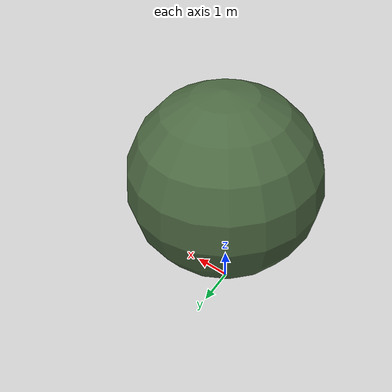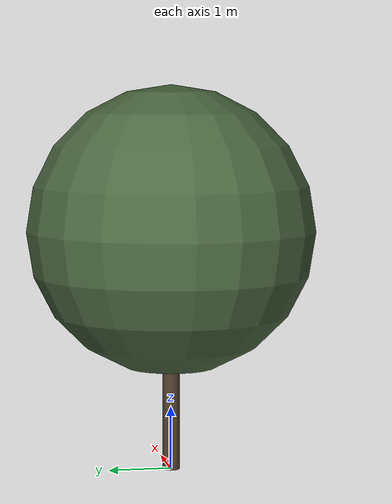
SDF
<?xml version="1.0" ?>
<sdf version="1.10">
  <model name="chene_vert_14">
    <static>true</static>

    <!-- Tronc -->
    <link name="trunk">
      <pose>0 0 1.5659186117981676 0 0 0</pose>
      <visual name="trunk_visual">
        <geometry>
          <cylinder>
            <radius>0.13664654487051714</radius>
            <length>3.131837223596335</length>
          </cylinder>
        </geometry>
        <material>
          <ambient>0.29 0.22 0.16 1</ambient>
          <diffuse>0.29 0.22 0.16 1</diffuse>
          <specular>0.1 0.1 0.1 1</specular>
        </material>
      </visual>
      <collision name="trunk_collision">
        <geometry>
          <cylinder>
            <radius>0.13664654487051714</radius>
            <length>3.131837223596335</length>
          </cylinder>
        </geometry>
      </collision>
    </link>

    <!-- Feuillage -->
    <link name="crown">
      <pose>0 0 3.815399795380493 0 0 0</pose>
      <visual name="crown_visual">
        <geometry>
          <sphere>
              <radius>2.2785419059471925</radius>
            </sphere>
        </geometry>
        <material>
          <ambient>0.29 0.40 0.25 1</ambient>
          <diffuse>0.29 0.40 0.25 1</diffuse>
          <specular>0.1 0.1 0.1 1</specular>
        </material>
      </visual>
      <collision name="crown_collision">
        <geometry>
          <sphere>
            <radius>1.822833524757754</radius>
          </sphere>
        </geometry>
      </collision>
    </link>

    <!-- Joint tronc-feuillage -->
    <joint name="trunk_crown_joint" type="fixed">
      <parent>trunk</parent>
      <child>crown</child>
    </joint>

  </model>
</sdf>
